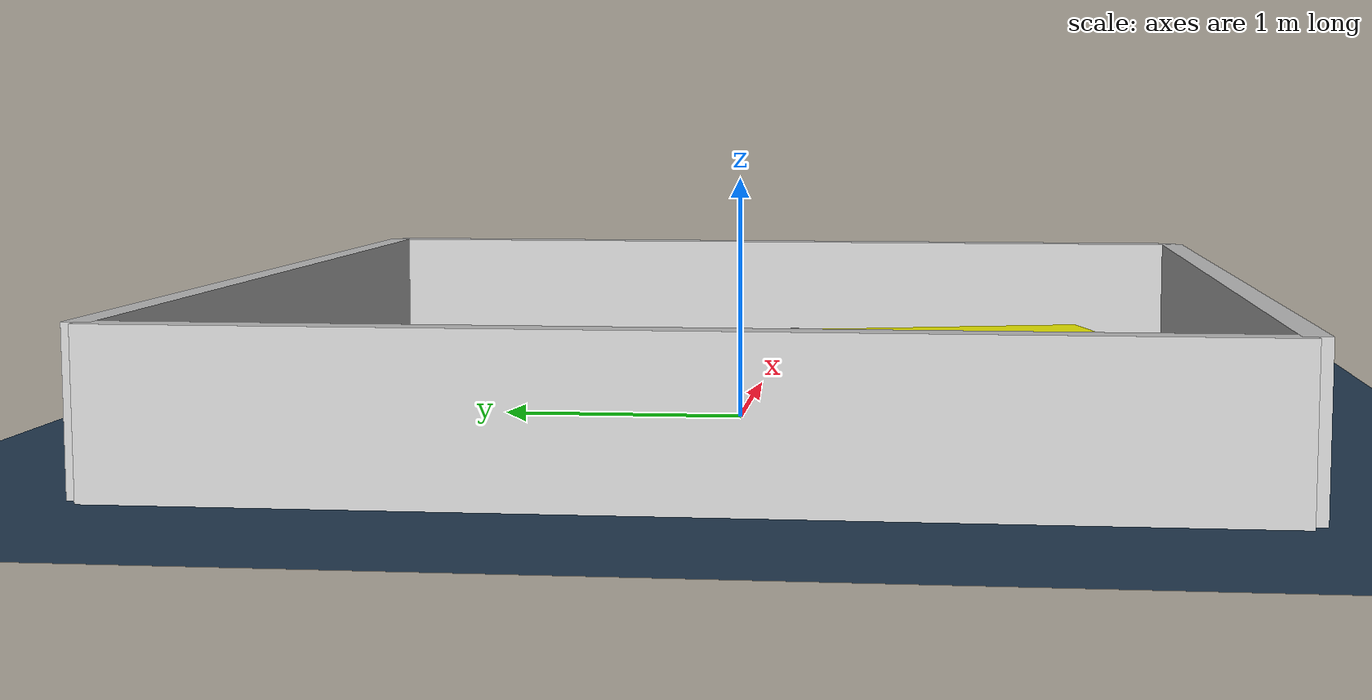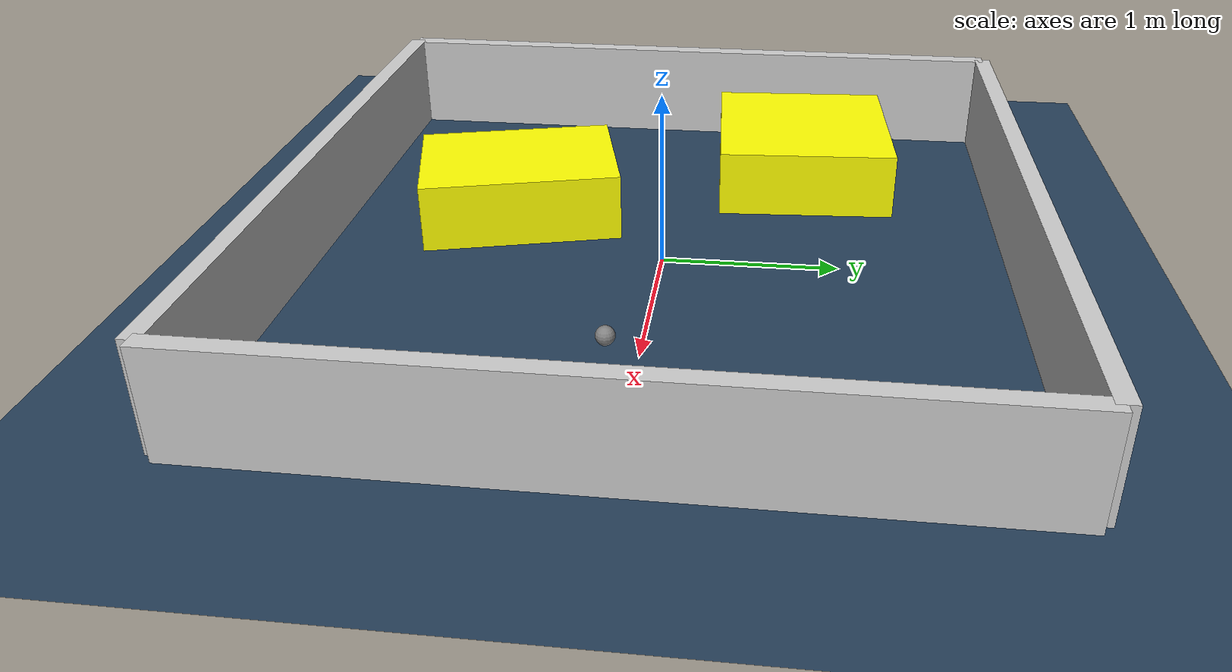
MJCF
<?xml version="1.0" ?>
<mujoco model="generated_environment">
  <option timestep="0.01" integrator="RK4" cone="elliptic"/>
  <default>
    <geom density="1"/>
  </default>
  <asset>
    <texture builtin="gradient" height="3072" rgb1="0.3 0.5 0.7" rgb2="0 0 0" type="skybox" width="512"/>
    <texture builtin="checker" height="300" mark="edge" markrgb="0.8 0.8 0.8" name="groundplane" rgb1="0.2 0.3 0.4" rgb2="0.1 0.2 0.3" type="2d" width="300"/>
    <material name="groundplane" reflectance="0.2" texrepeat="5 5" texture="groundplane" texuniform="true"/>
    <material name="robot" rgba="0.0 1.0 0.0 1"/>
  </asset>
  <worldbody>
    <light dir="0 0 -1" directional="true" pos="0 0 1.5"/>
    <geom condim="4" friction="1.0 0.005 0.001" material="groundplane" name="floor" size="0 0 0.05" type="plane"/>
    <body name="walls">
      <geom name="wall_1" condim="4" pos="-2.0 0.0 0.3" rgba="0.800000011920929 0.800000011920929 0.800000011920929 1.0" size="0.05 2.0 0.3" type="box"/>
      <geom name="wall_2" condim="4" pos="2.0 0.0 0.3" rgba="0.800000011920929 0.800000011920929 0.800000011920929 1.0" size="0.05 2.0 0.3" type="box"/>
      <geom name="wall_3" condim="4" pos="0.0 -2.0 0.3" rgba="0.800000011920929 0.800000011920929 0.800000011920929 1.0" size="2.0 0.05 0.3" type="box"/>
      <geom name="wall_4" condim="4" pos="0.0 2.0 0.3" rgba="0.800000011920929 0.800000011920929 0.800000011920929 1.0" size="2.0 0.05 0.3" type="box"/>
    </body>
    <body name="robot">
      <joint name="joint_x" type="slide" pos="0 0 0" axis="1 0 0"/>
      <joint name="joint_y" type="slide" pos="0 0 0" axis="0 1 0"/>
      <geom name="robot" type="sphere" pos="1.1342818071829472 -0.14631520142780396 0.2" size="0.05" mass="5." friction="1.0 0.005 0.0001" condim="4"/>
      <site name="sensor_ball"/>
    </body>
    <body name="obstacle_1_movable">
      <geom name="obstacle_1_movable" condim="4" pos="-1.1982171812914522 0.7880203694857826 0.2" euler="0 0 183.3137981924366" friction="1.0 0.005 0.001" rgba="1 1 0 1" size="0.535795638698702 0.5330810416145322 0.2" type="box" mass="0.1"/>
      <joint type="free"/>
    </body>
    <body name="obstacle_2_movable">
      <geom name="obstacle_2_movable" condim="4" pos="-0.48566725476888073 -0.9325154152042725 0.2" euler="0 0 284.48784202433706" friction="1.0 0.005 0.001" rgba="1 1 0 1" size="0.5807549127667655 0.4050068815010315 0.2" type="box" mass="0.1"/>
      <joint type="free"/>
    </body>
  </worldbody>
  <actuator>
    <motor name="actuator_x" joint="joint_x" gear="1" ctrlrange="-1 1"/>
    <motor name="actuator_y" joint="joint_y" gear="1" ctrlrange="-1 1"/>
  </actuator>
</mujoco>
